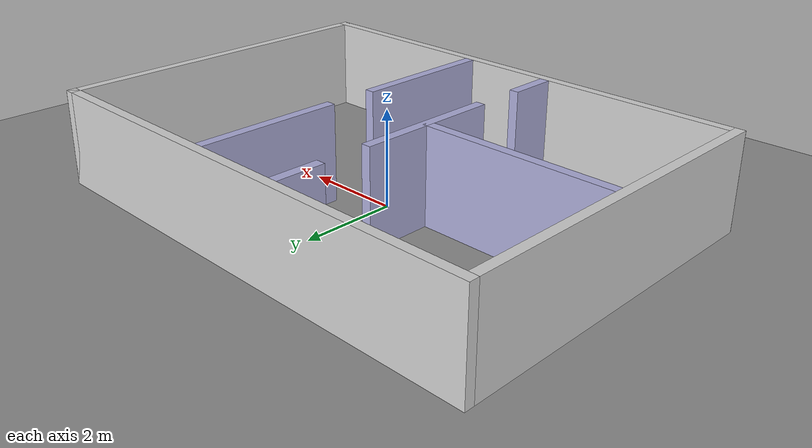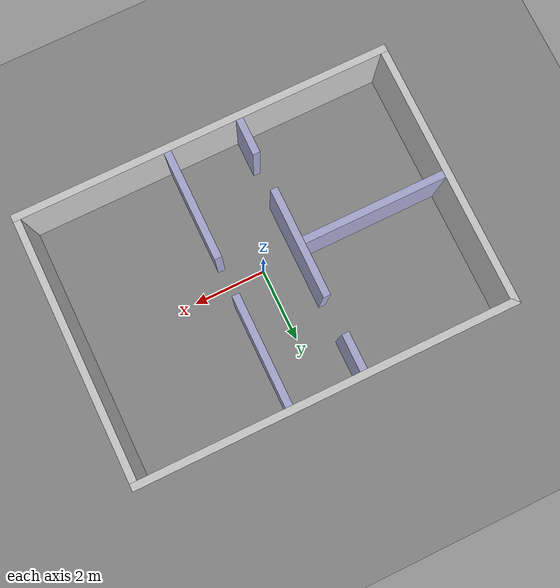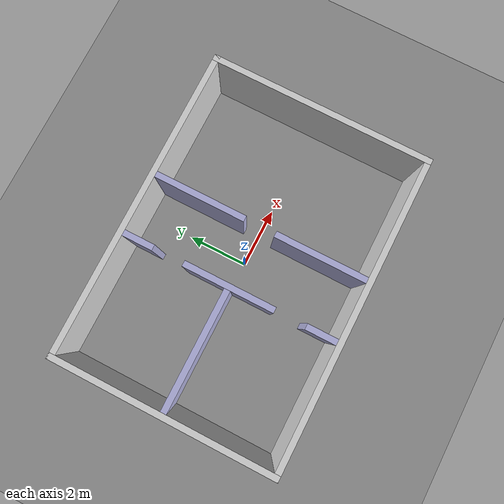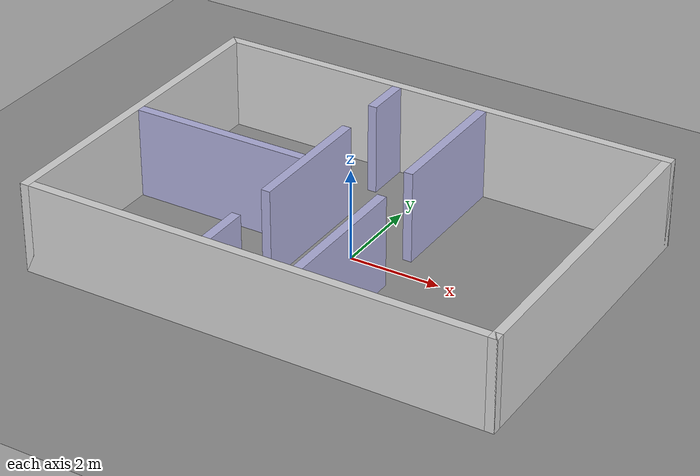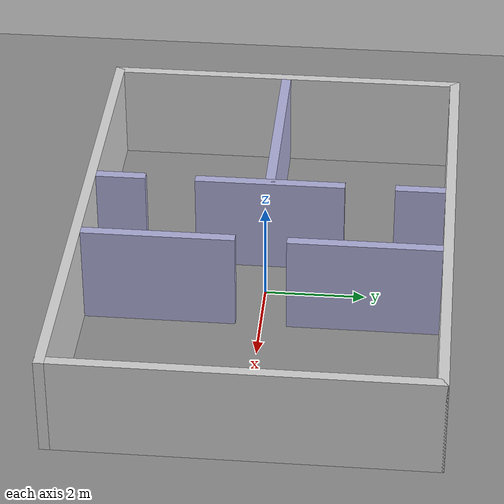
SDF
<?xml version="1.0"?>
<sdf version="1.9">
  <world name="casa_simple">

    <!-- ═══ Plugins requeridos por Ignition Fortress ═══════════════════ -->
    <plugin filename="gz-sim-physics-system"
            name="gz::sim::systems::Physics"/>
    <plugin filename="gz-sim-user-commands-system"
            name="gz::sim::systems::UserCommands"/>
    <plugin filename="gz-sim-scene-broadcaster-system"
            name="gz::sim::systems::SceneBroadcaster"/>
    <plugin filename="gz-sim-contact-system"
            name="gz::sim::systems::Contact"/>
    <!-- OBLIGATORIO para que el RPLIDAR (y cualquier sensor) genere datos -->
    <plugin filename="gz-sim-sensors-system"
            name="gz::sim::systems::Sensors">
      <render_engine>ogre2</render_engine>
    </plugin>
    <plugin filename="gz-sim-imu-system"
            name="gz::sim::systems::Imu"/>

    <!-- ═══ Física ════════════════════════════════════════════════════ -->
    <physics name="1ms" type="ignored">
      <max_step_size>0.001</max_step_size>
      <real_time_factor>1.0</real_time_factor>
    </physics>

    <!-- ═══ Iluminación ═══════════════════════════════════════════════ -->
    <light type="directional" name="sol">
      <cast_shadows>true</cast_shadows>
      <pose>0 0 10 0 0 0</pose>
      <diffuse>0.9 0.9 0.9 1</diffuse>
      <specular>0.3 0.3 0.3 1</specular>
      <direction>-0.5 0.1 -0.9</direction>
    </light>

    <!-- Luz de relleno para evitar zonas oscuras en habitaciones laterales -->
    <light type="point" name="luz_relleno">
      <pose>0 0 1.8 0 0 0</pose>
      <diffuse>0.4 0.4 0.4 1</diffuse>
      <specular>0 0 0 1</specular>
      <attenuation>
        <range>20</range>
        <linear>0.05</linear>
        <constant>0.1</constant>
        <quadratic>0.0</quadratic>
      </attenuation>
    </light>

    <!-- ═══ Suelo ══════════════════════════════════════════════════════ -->
    <model name="suelo">
      <static>true</static>
      <link name="link">
        <collision name="col">
          <geometry>
            <plane><normal>0 0 1</normal><size>30 30</size></plane>
          </geometry>
        </collision>
        <visual name="vis">
          <geometry>
            <plane><normal>0 0 1</normal><size>30 30</size></plane>
          </geometry>
          <material>
            <ambient>0.55 0.55 0.55 1</ambient>
            <diffuse>0.55 0.55 0.55 1</diffuse>
          </material>
        </visual>
      </link>
    </model>

    <!-- Pared norte (y = 3.5, cara interior) -->
    <model name="pared_norte">
      <static>true</static>
      <pose>0 3.6 1 0 0 0</pose>
      <link name="link">
        <collision name="col"><geometry><box><size>10.4 0.2 2.0</size></box></geometry></collision>
        <visual name="vis">
          <geometry><box><size>10.4 0.2 2.0</size></box></geometry>
          <material><ambient>0.82 0.82 0.82 1</ambient><diffuse>0.82 0.82 0.82 1</diffuse></material>
        </visual>
      </link>
    </model>

    <!-- Pared sur (y = -3.5, cara interior) -->
    <model name="pared_sur">
      <static>true</static>
      <pose>0 -3.6 1 0 0 0</pose>
      <link name="link">
        <collision name="col"><geometry><box><size>10.4 0.2 2.0</size></box></geometry></collision>
        <visual name="vis">
          <geometry><box><size>10.4 0.2 2.0</size></box></geometry>
          <material><ambient>0.82 0.82 0.82 1</ambient><diffuse>0.82 0.82 0.82 1</diffuse></material>
        </visual>
      </link>
    </model>

    <!-- Pared oeste (x = -5, cara interior) -->
    <model name="pared_oeste">
      <static>true</static>
      <pose>-5.1 0 1 0 0 0</pose>
      <link name="link">
        <collision name="col"><geometry><box><size>0.2 7.4 2.0</size></box></geometry></collision>
        <visual name="vis">
          <geometry><box><size>0.2 7.4 2.0</size></box></geometry>
          <material><ambient>0.82 0.82 0.82 1</ambient><diffuse>0.82 0.82 0.82 1</diffuse></material>
        </visual>
      </link>
    </model>

    <!-- Pared este (x = 5, cara interior) -->
    <model name="pared_este">
      <static>true</static>
      <pose>5.1 0 1 0 0 0</pose>
      <link name="link">
        <collision name="col"><geometry><box><size>0.2 7.4 2.0</size></box></geometry></collision>
        <visual name="vis">
          <geometry><box><size>0.2 7.4 2.0</size></box></geometry>
          <material><ambient>0.82 0.82 0.82 1</ambient><diffuse>0.82 0.82 0.82 1</diffuse></material>
        </visual>
      </link>
    </model>

    <!-- Tramo superior: y∈[2.5, 3.5] — encima del vano dormitorio -->
    <model name="tabique_lv_sup">
      <static>true</static>
      <pose>-1 3.0 1 0 0 0</pose>
      <link name="link">
        <collision name="col"><geometry><box><size>0.2 1.0 2.0</size></box></geometry></collision>
        <visual name="vis">
          <geometry><box><size>0.2 1.0 2.0</size></box></geometry>
          <material><ambient>0.68 0.68 0.85 1</ambient><diffuse>0.68 0.68 0.85 1</diffuse></material>
        </visual>
      </link>
    </model>

    <!-- Tramo central: y∈[-1.5, 1.5] — entre los dos vanos -->
    <model name="tabique_lv_cen">
      <static>true</static>
      <pose>-1 0.0 1 0 0 0</pose>
      <link name="link">
        <collision name="col"><geometry><box><size>0.2 3.0 2.0</size></box></geometry></collision>
        <visual name="vis">
          <geometry><box><size>0.2 3.0 2.0</size></box></geometry>
          <material><ambient>0.68 0.68 0.85 1</ambient><diffuse>0.68 0.68 0.85 1</diffuse></material>
        </visual>
      </link>
    </model>

    <!-- Tramo inferior: y∈[-3.5,-2.5] — debajo del vano cocina -->
    <model name="tabique_lv_inf">
      <static>true</static>
      <pose>-1 -3.0 1 0 0 0</pose>
      <link name="link">
        <collision name="col"><geometry><box><size>0.2 1.0 2.0</size></box></geometry></collision>
        <visual name="vis">
          <geometry><box><size>0.2 1.0 2.0</size></box></geometry>
          <material><ambient>0.68 0.68 0.85 1</ambient><diffuse>0.68 0.68 0.85 1</diffuse></material>
        </visual>
      </link>
    </model>

    <!-- Tramo norte: y∈[0.5, 3.5] -->
    <model name="tabique_rv_nor">
      <static>true</static>
      <pose>1 2.0 1 0 0 0</pose>
      <link name="link">
        <collision name="col"><geometry><box><size>0.2 3.0 2.0</size></box></geometry></collision>
        <visual name="vis">
          <geometry><box><size>0.2 3.0 2.0</size></box></geometry>
          <material><ambient>0.68 0.68 0.85 1</ambient><diffuse>0.68 0.68 0.85 1</diffuse></material>
        </visual>
      </link>
    </model>

    <!-- Tramo sur: y∈[-3.5,-0.5] -->
    <model name="tabique_rv_sur">
      <static>true</static>
      <pose>1 -2.0 1 0 0 0</pose>
      <link name="link">
        <collision name="col"><geometry><box><size>0.2 3.0 2.0</size></box></geometry></collision>
        <visual name="vis">
          <geometry><box><size>0.2 3.0 2.0</size></box></geometry>
          <material><ambient>0.68 0.68 0.85 1</ambient><diffuse>0.68 0.68 0.85 1</diffuse></material>
        </visual>
      </link>
    </model>

    <!-- ── TABIQUE HORIZONTAL (y=0): dormitorio ↔ cocina ──
         Sin puerta — solo accesible entre sí a través del pasillo.
         Longitud 4m: x∈[-5,-1]                                         -->
    <model name="tabique_h">
      <static>true</static>
      <pose>-3 0 1 0 0 0</pose>
      <link name="link">
        <collision name="col"><geometry><box><size>4.0 0.2 2.0</size></box></geometry></collision>
        <visual name="vis">
          <geometry><box><size>4.0 0.2 2.0</size></box></geometry>
          <material><ambient>0.68 0.68 0.85 1</ambient><diffuse>0.68 0.68 0.85 1</diffuse></material>
        </visual>
      </link>
    </model>

  </world>
</sdf>
